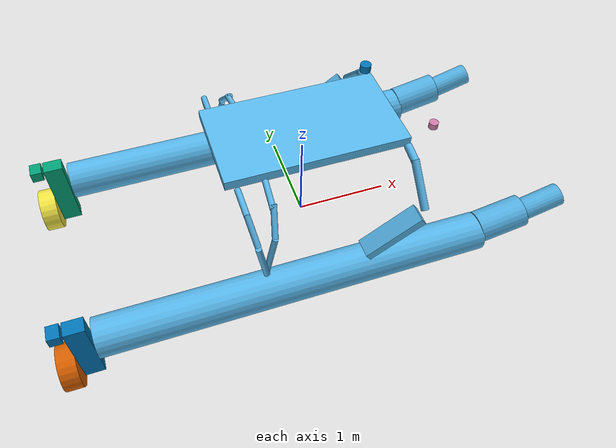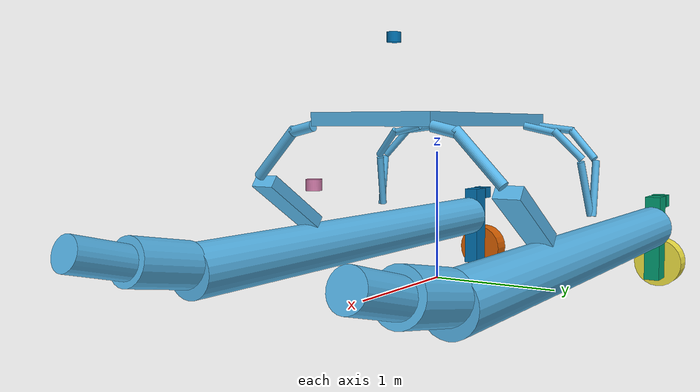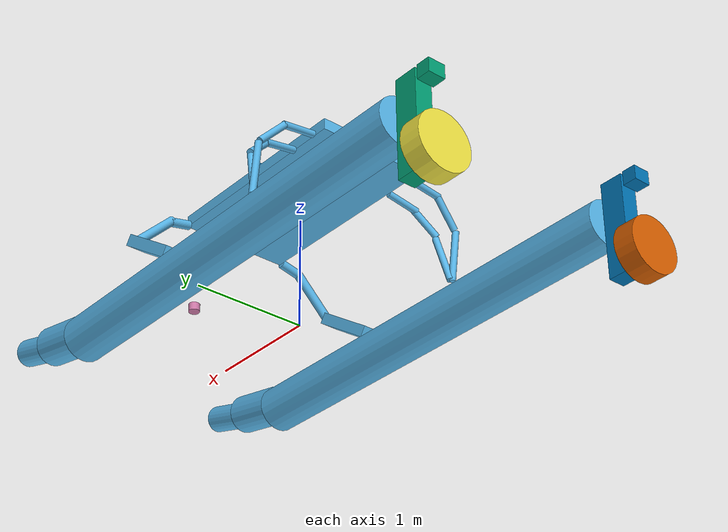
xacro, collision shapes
<?xml version="1.0"?>
<robot xmlns:xacro="http://ros.org/wiki/xacro" name="WAM-V">

  <xacro:arg name="thruster_config" default="H"/>

  <!-- Defines the basic WAM-V -->
  <xacro:include filename="$(find wamv_description)/urdf/wamv_basic.urdf.xacro">
    <xacro:thruster_config value="$(arg thruster_config)"/>
  </xacro:include>

  <!-- Defines Sensors -->
  <xacro:include filename="$(find wamv_description)/urdf/sensors/sensors.urdf.xacro"/>
</robot>

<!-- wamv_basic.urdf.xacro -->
<robot xmlns:xacro="http://ros.org/wiki/xacro" name="wam-v">
  <!-- Load base model (just include is enough) -->
  <xacro:include filename="$(find wamv_description)/urdf/engine/engine.urdf.xacro"/>

  <!-- Load engine macro -->
  <xacro:include filename="$(find wamv_description)/urdf/base/wamv_base.urdf.xacro"/>

  <!-- Describe engine -->
  <!-- Thruster Config -->
  <xacro:arg name="thruster_config" default="H"/>
  <xacro:property name="th_config" value="$(arg thruster_config)"/>

  <xacro:if value="${th_config == 'H'}">
    <xacro:engine prefix="left" position="-2.373776 1.027135 0.318237" />
    <xacro:engine prefix="right" position="-2.373776 -1.027135 0.318237" />
  </xacro:if>
  <xacro:if value="${th_config == 'T'}">
    <xacro:engine prefix="left" position="-2.373776 1.027135 0.318237" />
    <xacro:engine prefix="right" position="-2.373776 -1.027135 0.318237" />
    <xacro:engine prefix="lateral" position="0.0 0.0 0.318237" orientation="0.0 0.0 1.5707"/>
  </xacro:if>
  <xacro:if value="${th_config == 'X'}">
    <xacro:engine prefix="left_rear" position="-2.373776 1.027135 0.318237"  orientation="0.0 0.0 0.785"/>
    <xacro:engine prefix="right_rear" position="-2.373776 -1.027135 0.318237" orientation="0.0 0.0 -0.785"/>
    <xacro:engine prefix="left_front" position="1.6 0.7  0.25" orientation="0.0 0.0 -0.785"/>
    <xacro:engine prefix="right_front" position="1.6 -0.7 0.25" orientation="0.0 0.0 +0.785"/>
  </xacro:if>

</robot>

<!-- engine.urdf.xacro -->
<robot xmlns:xacro="http://ros.org/wiki/xacro" name="wam-v-two-engines">

<xacro:include filename="$(find wamv_description)/urdf/engine/engine.transmission.xacro"/>

  <!-- Macro for inserting an engine with its propeller. -->
  <xacro:macro name="engine" params="prefix position:='0 0 0' orientation:='0 0 0'">
    <link name="${prefix}_engine_link">
      <visual>
        <geometry>
          <mesh filename="package://wamv_description/mesh/engine.dae"/>
        </geometry>
      </visual>
      <collision name="${prefix}_engine_vertical_axis_collision">
        <origin xyz="-0.16 0 -0.24" rpy="0 0 0" />
        <geometry>
          <box size="0.2 0.15 0.83" />
        </geometry>
      </collision>
      <collision name="${prefix}_engine_rear_end_collision">
        <origin xyz="-0.34 0 0.12" rpy="0 0 0" />
        <geometry>
          <box size="0.12 0.15 0.12" />
        </geometry>
      </collision>
      <inertial>
        <mass value="15"/>
        <inertia ixx="0.889245" ixy="0.0" ixz="0.0" iyy="0.911125" iyz="0.0" izz="0.078125"/>
      </inertial>
    </link>

    <link name="${prefix}_propeller_link">
      <visual>
        <geometry>
          <mesh filename="package://wamv_description/mesh/propeller.dae"/>
        </geometry>
      </visual>
      <collision name="${prefix}_propeller_collision">
        <origin xyz="-0.08 0 0" rpy="0 1.57 0" />
        <geometry>
          <cylinder length="0.18" radius="0.24" />
        </geometry>
      </collision>
      <inertial>
        <mass value="0.5"/>
        <inertia ixx="0.008545" ixy="0.0" ixz="0.0" iyy="0.008545" iyz="0.0" izz="0.0144"/>
      </inertial>
    </link>

    <joint name="${prefix}_chasis_engine_joint" type="revolute">
      <origin xyz="${position}" rpy="${orientation}"/>
      <parent link="base_link"/>
      <child link="${prefix}_engine_link"/>
      <axis rpy="0 0 0" xyz="0 0 1"/>
      <dynamics damping="0.7" friction="0.7"/>
      <limit effort="10.0" lower="${-3*pi/4}" upper="${3*pi/4}" velocity="${pi/2}"/>
    </joint>

    <joint name="${prefix}_engine_propeller_joint" type="continuous">
      <axis rpy="0 0 0" xyz="1 0 0"/>
      <parent link="${prefix}_engine_link"/>
      <child link="${prefix}_propeller_link"/>
      <origin rpy="0 0 0" xyz="-0.278156 0 -0.509371"/>
      <limit effort="100" velocity="100" />
      <dynamics friction="0.05" damping="0.05" />
    </joint>
  </xacro:macro>

</robot>

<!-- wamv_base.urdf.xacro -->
<robot xmlns:xacro="http://ros.org/wiki/xacro" name="wam-v">
  <!-- Macro for creating the main collisions as simple shapes. -->
  <xacro:macro name="main_collisions" params="prefix reflect:=1">
    <!-- Main float -->
    <collision name="${prefix}_float">
      <origin xyz="-0.4 ${1.03*reflect} 0.2" rpy="${0*reflect} 1.57 0" />
      <geometry>
        <cylinder length="4" radius="0.2" />
      </geometry>
    </collision>
    <collision name="${prefix}_mid_float">
      <origin xyz="1.85 ${1.03*reflect} 0.3" rpy="${0*reflect} 1.38 0" />
      <geometry>
        <cylinder length="0.5" radius="0.17" />
      </geometry>
    </collision>
    <collision name="${prefix}_front_float">
      <origin xyz="2.3 ${1.03*reflect} 0.4" rpy="${0*reflect} 1.3 0" />
      <geometry>
        <cylinder length="0.45" radius="0.12" />
      </geometry>
    </collision>

    <!-- Front beam -->
    <collision name="front_${prefix}_beam_lower">
      <origin xyz="0.9 ${0.85*reflect} 1" rpy="${0.78*reflect} 0 0" />
      <geometry>
        <cylinder length="0.5" radius="0.04" />
      </geometry>
    </collision>

    <collision name="front_${prefix}_beam_upper">
      <origin xyz="0.9 ${0.6*reflect} 1.18" rpy="${1.35*reflect} 0 0" />
      <geometry>
        <cylinder length="0.2" radius="0.04" />
      </geometry>
    </collision>

    <!-- Mid beam -->
    <collision name="mid_${prefix}_beam_lower">
      <origin xyz="-0.65 ${0.99*reflect} 0.7" rpy="${0.1*reflect} 0.25 0" />
      <geometry>
        <cylinder length="0.45" radius="0.03" />
      </geometry>
    </collision>

    <collision name="mid_${prefix}_beam_medium">
      <origin xyz="-0.57 ${0.87*reflect} 1.05" rpy="${0.75*reflect} 0.25 0" />
      <geometry>
        <cylinder length="0.32" radius="0.03" />
      </geometry>
    </collision>

    <collision name="mid_${prefix}_beam_upper">
      <origin xyz="-0.55 ${0.65*reflect} 1.17" rpy="${1.35*reflect} 0.25 0" />
      <geometry>
        <cylinder length="0.3" radius="0.03" />
      </geometry>
    </collision>

    <!-- Rear beam -->
    <collision name="rear_${prefix}_beam_lower">
      <origin xyz="-0.74 ${1.03*reflect} 0.7" rpy="${0*reflect} -0.15 0" />
      <geometry>
        <cylinder length="0.45" radius="0.03" />
      </geometry>
    </collision>

    <collision name="rear_${prefix}_beam_medium">
      <origin xyz="-0.79 ${0.91*reflect} 1.05" rpy="${0.75*reflect} -0.15 0" />
      <geometry>
        <cylinder length="0.32" radius="0.03" />
      </geometry>
    </collision>

    <collision name="rear_${prefix}_beam_upper">
      <origin xyz="-0.81 ${0.67*reflect} 1.18" rpy="${1.45*reflect} -0.15 0" />
      <geometry>
        <cylinder length="0.3" radius="0.03" />
      </geometry>
    </collision>

    <!-- Joint -->
    <collision name="${prefix}_joint">
      <origin xyz="0.58 ${1.03*reflect} 0.6" rpy="${0*reflect} -0.6 0" />
      <geometry>
        <box size="0.65 0.2 0.1" />
      </geometry>
    </collision>
  </xacro:macro>

  <!-- base_footprint link -->
  <link name="base_footprint"/>
  <joint name="base_footprint_to_base_link" type="fixed">
    <parent link="base_footprint"/>
    <child link="base_link"/>
  </joint>

  <!-- Basic model of the 16' WAM-V USV -->
  <link name="base_link">
    <visual>
      <geometry>
        <mesh filename="package://wamv_description/mesh/WAM-V-Base.dae"/>
      </geometry>
    </visual>

    <!-- Left base collisions -->
    <xacro:main_collisions prefix="left" reflect="1" />

    <!-- Right side collisions -->
    <xacro:main_collisions prefix="right" reflect="-1" />

     <!-- Top base -->
    <collision name="top_base">
      <origin xyz="0 -0 1.25" rpy="0 0 0" />
      <geometry>
        <box size="1.85 1 0.1" />
      </geometry>
    </collision>

    <inertial>
      <!-- From WAM-V spec sheet -->
      <mass value="180.0"/>
      <inertia ixx="120.0" ixy="0.0" ixz="0.0" iyy="393" iyz="0.0" izz="446.0"/>
    </inertial>
  </link>

</robot>

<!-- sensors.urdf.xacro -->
<robot xmlns:xacro="http://ros.org/wiki/xacro" name="wam-v">
  <xacro:include filename="$(find wamv_description)/urdf/sensors/stereo_camera/stereo_camera.urdf.xacro"/>
  <xacro:include filename="$(find wamv_description)/urdf/sensors/gps/gps.urdf.xacro"/>
  <xacro:include filename="$(find wamv_description)/urdf/sensors/imu/imu.urdf.xacro"/>
  <xacro:include filename="$(find wamv_description)/urdf/sensors/velodyne/velodyne.urdf.xacro"/>

  <!-- Enable Flag -->
  <xacro:arg name="camera_enabled" default="true" />
  <xacro:arg name="gps_enabled" default="true" />
  <xacro:arg name="imu_enabled" default="true" />
  <xacro:arg name="stereo_camera_enabled" default="true" />
  <xacro:arg name="twist_enabled" default="true"/>
  <xacro:arg name="velodyne_enabled" default="true"/>

  <!-- Camera-->
  <xacro:if value="$(arg camera_enabled)">
    <xacro:camera_v0 prefix="front" parent="base_link">
      <origin xyz="0.8 0 1.6"/>
    </xacro:camera_v0>
  </xacro:if>
  <!-- GPS -->
  <xacro:if value="$(arg gps_enabled)">
    <xacro:gps_v0/>
  </xacro:if>
  <!-- IMU -->
  <xacro:if value="$(arg imu_enabled)">
    <xacro:imu_v0/>
  </xacro:if>
  <!-- Stereo Camera -->
  <xacro:if value="$(arg stereo_camera_enabled)">
    <xacro:stereo_camera_v1 prefix="front" parent="base_link" base_line_length="0.5">
      <origin xyz="0.8 0 1.4"/>
    </xacro:stereo_camera_v1>
  </xacro:if>
  <!-- Velodyne -->
  <xacro:if value="$(arg velodyne_enabled)">
    <xacro:velodyne_v0/>
  </xacro:if>

</robot>

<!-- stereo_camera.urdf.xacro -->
<robot xmlns:xacro="http://ros.org/wiki/xacro" name="wam-v">
  <xacro:include filename="$(find wamv_description)/urdf/sensors/camera/camera.urdf.xacro"/>

  <xacro:macro name="stereo_camera_v1" params="prefix parent base_line_length *origin">
    <!-- add link and joint -->
    <link name="${prefix}_stereo_camera_link"/>
    <joint name="${prefix}_stereo_camera_joint" type="fixed">
      <insert_block name="origin"/>
      <parent link="${parent}"/>
      <child link="${prefix}_stereo_camera_link"/>
    </joint>
    <!-- Left Camera -->
    <xacro:camera_v0 prefix="${prefix}_stereo_left" parent="${prefix}_stereo_camera_link">
      <origin xyz="0 ${base_line_length*(0.5)} 0"/>
    </xacro:camera_v0>
    <!-- Right Camera -->
    <xacro:camera_v0 prefix="${prefix}_stereo_right" parent="${prefix}_stereo_camera_link">
      <origin xyz="0 ${base_line_length*(-0.5)} 0"/>
    </xacro:camera_v0>
  </xacro:macro>

</robot>

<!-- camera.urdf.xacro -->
<robot xmlns:xacro="http://ros.org/wiki/xacro" name="wam-v">

  <xacro:macro name="camera_v0" params="prefix parent *origin">
    <!-- Link & Joint -->
    <link name="${prefix}_camera_link"/>
    <joint name="${prefix}_camera_joint" type="fixed">
      <insert_block name="origin"/>
      <parent link="${parent}"/>
      <child link="${prefix}_camera_link"/>
    </joint>
  </xacro:macro>

</robot>

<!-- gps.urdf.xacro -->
<robot xmlns:xacro="http://ros.org/wiki/xacro" name="wam-v">

  <xacro:macro name="gps_v0">
    <!-- Link & Joint -->
    <link name="gps"/>
    <joint name="gps_joint" type="fixed">
      <origin xyz="0 0 1.5"/>
      <parent link="base_link"/>
      <child link="gps"/>
    </joint>
  </xacro:macro>

</robot>

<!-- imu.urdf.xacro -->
<robot xmlns:xacro="http://ros.org/wiki/xacro" name="wam-v">

  <xacro:macro name="imu_v0">
    <!-- Link & Joint -->
    <link name="imu"/>
    <joint name="imu_joint" type="fixed">
      <origin xyz="-0.3 0 1.5"/>
      <parent link="base_link"/>
      <child link="imu"/>
    </joint>
  </xacro:macro>

</robot>

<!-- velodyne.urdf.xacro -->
<robot xmlns:xacro="http://ros.org/wiki/xacro" name="wam-v">
  <xacro:include filename="$(find velodyne_description)/urdf/VLP-16.urdf.xacro"/>

  <xacro:macro name="velodyne_v0">
    <!-- Velodyne Link+Joint+Plugin -->
    <xacro:VLP-16 parent="base_link" name="velodyne"
                  topic="/velodyne_points"
                  hz="10" samples="440">
      <origin xyz="0.6 0 1.8" rpy="0 0 0" />
    </xacro:VLP-16>
    <!-- Velodyne Link+Joint+Plugin -->
    <xacro:VLP-16 parent="base_link" name="velodyne2"
                  topic="/velodyne2_points"
                  hz="10" samples="440">
      <origin xyz="1.5 0 0.8" rpy="0 0 0" />
    </xacro:VLP-16>

    <!-- For adding AI Pilot model -->
    <!-- 1. Comment out following part -->
    <!-- 2. Write the path to ai pilot collada file -->

  </xacro:macro>

</robot>

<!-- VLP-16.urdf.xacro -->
<robot xmlns:xacro="http://www.ros.org/wiki/xacro" name="VLP-16">
  <xacro:property name="M_PI" value="3.1415926535897931" />
  <xacro:macro name="VLP-16" params="*origin is_sim:=true parent:=base_link name:=velodyne tf_prefix:='' topic:=/velodyne_points organize_cloud:=false hz:=10 lasers:=16 samples:=1875 collision_range:=0.3 min_range:=0.0 max_range:=100.0 noise:=0.008 min_angle:=-${M_PI} max_angle:=${M_PI} gpu:=false">

    <joint name="${name}_base_mount_joint" type="fixed">
      <xacro:insert_block name="origin" />
      <parent link="${parent}"/>
      <child link="${name}_base_link"/>
    </joint>

    <link name="${name}_base_link">
      <inertial>
        <mass value="0.83"/>
        <origin xyz="0 0 0.03585"/>
        <inertia ixx="${(0.83 * (3.0*0.0516*0.0516 + 0.0717*0.0717)) / 12.0}" ixy="0" ixz="0"
          iyy="${(0.83 * (3.0*0.0516*0.0516 + 0.0717*0.0717)) / 12.0}" iyz="0"
          izz="${0.5 * 0.83 * (0.0516*0.0516)}"/>
      </inertial>
      <visual>
        <geometry>
          <mesh filename="package://velodyne_description/meshes/VLP16_base_1.dae" />
        </geometry>
      </visual>
      <visual>
        <geometry>
          <mesh filename="package://velodyne_description/meshes/VLP16_base_2.dae" />
        </geometry>
      </visual>
      <collision>
        <origin rpy="0 0 0" xyz="0 0 0.03585"/>
        <geometry>
          <cylinder radius="0.0516" length="0.0717"/>
        </geometry>
      </collision>
    </link>

    <joint name="${name}_base_scan_joint" type="fixed" >
      <origin xyz="0 0 0.0377" rpy="0 0 0" />
      <parent link="${name}_base_link" />
      <child link="${name}"/>
    </joint>

    <link name="${name}">
      <inertial>
        <mass value="0.01"/>
        <origin xyz="0 0 0"/>
        <inertia ixx="1e-7" ixy="0" ixz="0" iyy="1e-7" iyz="0" izz="1e-7"/>
      </inertial>
      <visual>
        <origin xyz="0 0 -0.0377" />
        <geometry>
          <mesh filename="package://velodyne_description/meshes/VLP16_scan.dae" />
        </geometry>
      </visual>
      <collision>
        <geometry>
          <sphere radius="0"/>
        </geometry>
      </collision>
    </link>

    <!-- Gazebo requires the velodyne_gazebo_plugins package -->
    <xacro:if value="${is_sim}">
        <gazebo reference="${name}">
            <xacro:if value="${gpu}">
                <sensor type="gpu_ray" name="${name}-VLP16">
                <pose>0 0 0 0 0 0</pose>
                <visualize>false</visualize>
                <update_rate>${hz}</update_rate>
                <ray>
                    <scan>
                    <horizontal>
                        <samples>${samples}</samples>
                        <resolution>1</resolution>
                        <min_angle>${min_angle}</min_angle>
                        <max_angle>${max_angle}</max_angle>
                    </horizontal>
                    <vertical>
                        <samples>${lasers}</samples>
                        <resolution>1</resolution>
                        <min_angle>-${15.0*M_PI/180.0}</min_angle>
                        <max_angle> ${15.0*M_PI/180.0}</max_angle>
                    </vertical>
                    </scan>
                    <range>
                    <min>${collision_range}</min>
                    <max>${max_range+1}</max>
                    <resolution>0.001</resolution>
                    </range>
                    <noise>
                    <type>gaussian</type>
                    <mean>0.0</mean>
                    <stddev>0.0</stddev>
                    </noise>
                </ray>
                <plugin name="gazebo_ros_laser_controller" filename="libgazebo_ros_velodyne_laser.so">
                    <ros>
                    <namespace>/${name}</namespace>
                    <remapping>~/out:=${topic}</remapping>
                    </ros>
                    <tf_prefix>${tf_prefix}</tf_prefix>
                    <frame_name>${name}</frame_name>
                    <organize_cloud>${organize_cloud}</organize_cloud>
                    <min_range>${min_range}</min_range>
                    <max_range>${max_range}</max_range>
                    <gaussian_noise>${noise}</gaussian_noise>
                </plugin>
                </sensor>
            </xacro:if>
            <xacro:unless value="${gpu}">
                <sensor type="ray" name="${name}-VLP16">
                <pose>0 0 0 0 0 0</pose>
                <visualize>false</visualize>
                <update_rate>${hz}</update_rate>
                <ray>
                    <scan>
                    <horizontal>
                        <samples>${samples}</samples>
                        <resolution>1</resolution>
                        <min_angle>${min_angle}</min_angle>
                        <max_angle>${max_angle}</max_angle>
                    </horizontal>
                    <vertical>
                        <samples>${lasers}</samples>
                        <resolution>1</resolution>
                        <min_angle>-${15.0*M_PI/180.0}</min_angle>
                        <max_angle> ${15.0*M_PI/180.0}</max_angle>
                    </vertical>
                    </scan>
                    <range>
                    <min>${collision_range}</min>
                    <max>${max_range+1}</max>
                    <resolution>0.001</resolution>
                    </range>
                    <noise>
                    <type>gaussian</type>
                    <mean>0.0</mean>
                    <stddev>0.0</stddev>
                    </noise>
                </ray>
                <plugin name="gazebo_ros_laser_controller" filename="libgazebo_ros_velodyne_laser.so">
                    <ros>
                    <namespace>/${name}</namespace>
                    <remapping>~/out:=${topic}</remapping>
                    </ros>
                    <tf_prefix>${tf_prefix}</tf_prefix>
                    <frame_name>${name}</frame_name>
                    <organize_cloud>${organize_cloud}</organize_cloud>
                    <min_range>${min_range}</min_range>
                    <max_range>${max_range}</max_range>
                    <gaussian_noise>${noise}</gaussian_noise>
                </plugin>
                </sensor>
            </xacro:unless>
        </gazebo>
    </xacro:if>

  </xacro:macro>
</robot>
